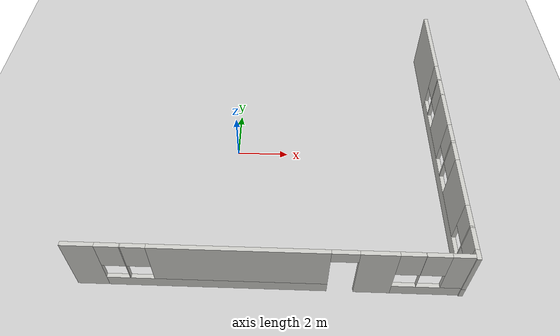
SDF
<sdf version="1.6">
 <world name="default">
  <model name="ground_plane">
   <static>1</static>
   <link name="link">
    <collision name="collision">
     <geometry><plane><normal>0 0 1</normal><size>100 100</size></plane></geometry>
     <surface><friction><ode><mu>100</mu><mu2>50</mu2></ode></friction></surface>
    </collision>
    <visual name="visual">
     <cast_shadows>0</cast_shadows>
     <geometry><plane><normal>0 0 1</normal><size>100 100</size></plane></geometry>
     <material>
      <script><uri>file://media/materials/scripts/gazebo.material</uri><name>Gazebo/Grey</name></script>
     </material>
    </visual>
   </link>
  </model>
  <model name="wall_window_door_tiles">
   <pose>1.42377 -5.91503 0 0 -0 0</pose>
   <link name="Wall_0">
    <visual name="Wall_0_Visual_0">
     <pose>-5.9525 0 1.25 0 -0 0</pose>
     <geometry><box><size>1.095 0.15 2.5</size></box></geometry>
     <material>
      <script><uri>file://media/materials/scripts/gazebo.material</uri><name>Gazebo/CeilingTiled</name></script>
      <ambient>1 1 1 1</ambient>
     </material>
     <meta><layer>0</layer></meta>
    </visual>
    <collision name="Wall_0_Collision_0">
     <geometry><box><size>1.095 0.15 2.5</size></box></geometry>
     <pose>-5.9525 0 1.25 0 -0 0</pose>
    </collision>
    <visual name="Wall_0_Visual_1">
     <pose>3.555 0 1.25 0 -0 0</pose>
     <geometry><box><size>1.24 0.15 2.5</size></box></geometry>
     <material>
      <script><uri>file://media/materials/scripts/gazebo.material</uri><name>Gazebo/CeilingTiled</name></script>
      <ambient>1 1 1 1</ambient>
     </material>
     <meta><layer>0</layer></meta>
    </visual>
    <collision name="Wall_0_Collision_1">
     <geometry><box><size>1.24 0.15 2.5</size></box></geometry>
     <pose>3.555 0 1.25 0 -0 0</pose>
    </collision>
    <visual name="Wall_0_Visual_2">
     <pose>-1.685 0 0.25 0 -0 0</pose>
     <geometry><box><size>7.44 0.15 0.5</size></box></geometry>
     <material>
      <script><uri>file://media/materials/scripts/gazebo.material</uri><name>Gazebo/CeilingTiled</name></script>
      <ambient>1 1 1 1</ambient>
     </material>
     <meta><layer>0</layer></meta>
    </visual>
    <collision name="Wall_0_Collision_2">
     <geometry><box><size>7.44 0.15 0.5</size></box></geometry>
     <pose>-1.685 0 0.25 0 -0 0</pose>
    </collision>
    <visual name="Wall_0_Visual_3">
     <pose>5.3375 0 0.25 0 -0 0</pose>
     <geometry><box><size>2.325 0.15 0.5</size></box></geometry>
     <material>
      <script><uri>file://media/materials/scripts/gazebo.material</uri><name>Gazebo/CeilingTiled</name></script>
      <ambient>1 1 1 1</ambient>
     </material>
     <meta><layer>0</layer></meta>
    </visual>
    <collision name="Wall_0_Collision_3">
     <geometry><box><size>2.325 0.15 0.5</size></box></geometry>
     <pose>5.3375 0 0.25 0 -0 0</pose>
    </collision>
    <visual name="Wall_0_Visual_4">
     <pose>-4.59 0 1.5 0 -0 0</pose>
     <geometry><box><size>0.03 0.15 2</size></box></geometry>
     <material>
      <script><uri>file://media/materials/scripts/gazebo.material</uri><name>Gazebo/CeilingTiled</name></script>
      <ambient>1 1 1 1</ambient>
     </material>
     <meta><layer>0</layer></meta>
    </visual>
    <collision name="Wall_0_Collision_4">
     <geometry><box><size>0.03 0.15 2</size></box></geometry>
     <pose>-4.59 0 1.5 0 -0 0</pose>
    </collision>
    <visual name="Wall_0_Visual_5">
     <pose>-0.87 0 1.5 0 -0 0</pose>
     <geometry><box><size>5.81 0.15 2</size></box></geometry>
     <material>
      <script><uri>file://media/materials/scripts/gazebo.material</uri><name>Gazebo/CeilingTiled</name></script>
      <ambient>1 1 1 1</ambient>
     </material>
     <meta><layer>0</layer></meta>
    </visual>
    <collision name="Wall_0_Collision_5">
     <geometry><box><size>5.81 0.15 2</size></box></geometry>
     <pose>-0.87 0 1.5 0 -0 0</pose>
    </collision>
    <visual name="Wall_0_Visual_6">
     <pose>-0.87 0 1.5 0 -0 0</pose>
     <geometry><box><size>5.81 0.15 2</size></box></geometry>
     <material>
      <script><uri>file://media/materials/scripts/gazebo.material</uri><name>Gazebo/CeilingTiled</name></script>
      <ambient>1 1 1 1</ambient>
     </material>
     <meta><layer>0</layer></meta>
    </visual>
    <collision name="Wall_0_Collision_6">
     <geometry><box><size>5.81 0.15 2</size></box></geometry>
     <pose>-0.87 0 1.5 0 -0 0</pose>
    </collision>
    <visual name="Wall_0_Visual_7">
     <pose>4.98 0 1.5 0 -0 0</pose>
     <geometry><box><size>0.01 0.15 2</size></box></geometry>
     <material>
      <script><uri>file://media/materials/scripts/gazebo.material</uri><name>Gazebo/CeilingTiled</name></script>
      <ambient>1 1 1 1</ambient>
     </material>
     <meta><layer>0</layer></meta>
    </visual>
    <collision name="Wall_0_Collision_7">
     <geometry><box><size>0.01 0.15 2</size></box></geometry>
     <pose>4.98 0 1.5 0 -0 0</pose>
    </collision>
    <visual name="Wall_0_Visual_8">
     <pose>6.1425 0 1.5 0 -0 0</pose>
     <geometry><box><size>0.715 0.15 2</size></box></geometry>
     <material>
      <script><uri>file://media/materials/scripts/gazebo.material</uri><name>Gazebo/CeilingTiled</name></script>
      <ambient>1 1 1 1</ambient>
     </material>
     <meta><layer>0</layer></meta>
    </visual>
    <collision name="Wall_0_Collision_8">
     <geometry><box><size>0.715 0.15 2</size></box></geometry>
     <pose>6.1425 0 1.5 0 -0 0</pose>
    </collision>
    <visual name="Wall_0_Visual_9">
     <pose>-5.005 0 1.9 0 -0 0</pose>
     <geometry><box><size>0.8 0.15 1.2</size></box></geometry>
     <material>
      <script><uri>file://media/materials/scripts/gazebo.material</uri><name>Gazebo/CeilingTiled</name></script>
      <ambient>1 1 1 1</ambient>
     </material>
     <meta><layer>0</layer></meta>
    </visual>
    <collision name="Wall_0_Collision_9">
     <geometry><box><size>0.8 0.15 1.2</size></box></geometry>
     <pose>-5.005 0 1.9 0 -0 0</pose>
    </collision>
    <visual name="Wall_0_Visual_10">
     <pose>4.575 0 1.9 0 -0 0</pose>
     <geometry><box><size>0.8 0.15 1.2</size></box></geometry>
     <material>
      <script><uri>file://media/materials/scripts/gazebo.material</uri><name>Gazebo/CeilingTiled</name></script>
      <ambient>1 1 1 1</ambient>
     </material>
     <meta><layer>0</layer></meta>
    </visual>
    <collision name="Wall_0_Collision_10">
     <geometry><box><size>0.8 0.15 1.2</size></box></geometry>
     <pose>4.575 0 1.9 0 -0 0</pose>
    </collision>
    <visual name="Wall_0_Visual_11">
     <pose>-4.175 0 1.9 0 -0 0</pose>
     <geometry><box><size>0.8 0.15 1.2</size></box></geometry>
     <material>
      <script><uri>file://media/materials/scripts/gazebo.material</uri><name>Gazebo/CeilingTiled</name></script>
      <ambient>1 1 1 1</ambient>
     </material>
     <meta><layer>0</layer></meta>
    </visual>
    <collision name="Wall_0_Collision_11">
     <geometry><box><size>0.8 0.15 1.2</size></box></geometry>
     <pose>-4.175 0 1.9 0 -0 0</pose>
    </collision>
    <visual name="Wall_0_Visual_12">
     <pose>5.385 0 1.9 0 -0 0</pose>
     <geometry><box><size>0.8 0.15 1.2</size></box></geometry>
     <material>
      <script><uri>file://media/materials/scripts/gazebo.material</uri><name>Gazebo/CeilingTiled</name></script>
      <ambient>1 1 1 1</ambient>
     </material>
     <meta><layer>0</layer></meta>
    </visual>
    <collision name="Wall_0_Collision_12">
     <geometry><box><size>0.8 0.15 1.2</size></box></geometry>
     <pose>5.385 0 1.9 0 -0 0</pose>
    </collision>
    <visual name="Wall_0_Visual_13">
     <pose>2.485 0 2.25 0 -0 0</pose>
     <geometry><box><size>0.9 0.15 0.5</size></box></geometry>
     <material>
      <script><uri>file://media/materials/scripts/gazebo.material</uri><name>Gazebo/CeilingTiled</name></script>
      <ambient>1 1 1 1</ambient>
     </material>
     <meta><layer>0</layer></meta>
    </visual>
    <collision name="Wall_0_Collision_13">
     <geometry><box><size>0.9 0.15 0.5</size></box></geometry>
     <pose>2.485 0 2.25 0 -0 0</pose>
    </collision>
    <visual name="Wall_0_Visual_14">
     <pose>2.485 0 2.25 0 -0 0</pose>
     <geometry><box><size>0.9 0.15 0.5</size></box></geometry>
     <material>
      <script><uri>file://media/materials/scripts/gazebo.material</uri><name>Gazebo/CeilingTiled</name></script>
      <ambient>1 1 1 1</ambient>
     </material>
     <meta><layer>0</layer></meta>
    </visual>
    <collision name="Wall_0_Collision_14">
     <geometry><box><size>0.9 0.15 0.5</size></box></geometry>
     <pose>2.485 0 2.25 0 -0 0</pose>
    </collision>
   </link>
   <static>1</static>
  </model>
  <model name="wall_short_window_tiles">
   <pose>7.99601 -0.02569 0 0 -0 0</pose>
   <link name="Wall_0">
    <pose>0 -0 0 0 -0 -1.5708</pose>
    <visual name="Wall_0_Visual_0">
     <pose>-4.43927 0 1.25 0 -0 0</pose>
     <geometry><box><size>3.12146 0.15 2.5</size></box></geometry>
     <material>
      <script><uri>file://media/materials/scripts/gazebo.material</uri><name>Gazebo/CeilingTiled</name></script>
      <ambient>1 1 1 1</ambient>
     </material>
     <meta><layer>0</layer></meta>
    </visual>
    <collision name="Wall_0_Collision_0">
     <geometry><box><size>3.12146 0.15 2.5</size></box></geometry>
     <pose>-4.43927 0 1.25 0 -0 0</pose>
    </collision>
    <visual name="Wall_0_Visual_1">
     <pose>1.56073 0 0.25 0 -0 0</pose>
     <geometry><box><size>8.87854 0.15 0.5</size></box></geometry>
     <material>
      <script><uri>file://media/materials/scripts/gazebo.material</uri><name>Gazebo/CeilingTiled</name></script>
      <ambient>1 1 1 1</ambient>
     </material>
     <meta><layer>0</layer></meta>
    </visual>
    <collision name="Wall_0_Collision_1">
     <geometry><box><size>8.87854 0.15 0.5</size></box></geometry>
     <pose>1.56073 0 0.25 0 -0 0</pose>
    </collision>
    <visual name="Wall_0_Visual_2">
     <pose>-2.05062 0 1.5 0 -0 0</pose>
     <geometry><box><size>0.055833 0.15 2</size></box></geometry>
     <material>
      <script><uri>file://media/materials/scripts/gazebo.material</uri><name>Gazebo/CeilingTiled</name></script>
      <ambient>1 1 1 1</ambient>
     </material>
     <meta><layer>0</layer></meta>
    </visual>
    <collision name="Wall_0_Collision_2">
     <geometry><box><size>0.055833 0.15 2</size></box></geometry>
     <pose>-2.05062 0 1.5 0 -0 0</pose>
    </collision>
    <visual name="Wall_0_Visual_3">
     <pose>-0.423181 0 1.5 0 -0 0</pose>
     <geometry><box><size>1.59905 0.15 2</size></box></geometry>
     <material>
      <script><uri>file://media/materials/scripts/gazebo.material</uri><name>Gazebo/CeilingTiled</name></script>
      <ambient>1 1 1 1</ambient>
     </material>
     <meta><layer>0</layer></meta>
    </visual>
    <collision name="Wall_0_Collision_3">
     <geometry><box><size>1.59905 0.15 2</size></box></geometry>
     <pose>-0.423181 0 1.5 0 -0 0</pose>
    </collision>
    <visual name="Wall_0_Visual_4">
     <pose>1.21525 0 1.5 0 -0 0</pose>
     <geometry><box><size>0.077807 0.15 2</size></box></geometry>
     <material>
      <script><uri>file://media/materials/scripts/gazebo.material</uri><name>Gazebo/CeilingTiled</name></script>
      <ambient>1 1 1 1</ambient>
     </material>
     <meta><layer>0</layer></meta>
    </visual>
    <collision name="Wall_0_Collision_4">
     <geometry><box><size>0.077807 0.15 2</size></box></geometry>
     <pose>1.21525 0 1.5 0 -0 0</pose>
    </collision>
    <visual name="Wall_0_Visual_5">
     <pose>3.0227 0 1.5 0 -0 0</pose>
     <geometry><box><size>1.9371 0.15 2</size></box></geometry>
     <material>
      <script><uri>file://media/materials/scripts/gazebo.material</uri><name>Gazebo/CeilingTiled</name></script>
      <ambient>1 1 1 1</ambient>
     </material>
     <meta><layer>0</layer></meta>
    </visual>
    <collision name="Wall_0_Collision_5">
     <geometry><box><size>1.9371 0.15 2</size></box></geometry>
     <pose>3.0227 0 1.5 0 -0 0</pose>
    </collision>
    <visual name="Wall_0_Visual_6">
     <pose>4.81917 0 1.5 0 -0 0</pose>
     <geometry><box><size>0.055833 0.15 2</size></box></geometry>
     <material>
      <script><uri>file://media/materials/scripts/gazebo.material</uri><name>Gazebo/CeilingTiled</name></script>
      <ambient>1 1 1 1</ambient>
     </material>
     <meta><layer>0</layer></meta>
    </visual>
    <collision name="Wall_0_Collision_6">
     <geometry><box><size>0.055833 0.15 2</size></box></geometry>
     <pose>4.81917 0 1.5 0 -0 0</pose>
    </collision>
    <visual name="Wall_0_Visual_7">
     <pose>5.82354 0 1.5 0 -0 0</pose>
     <geometry><box><size>0.352917 0.15 2</size></box></geometry>
     <material>
      <script><uri>file://media/materials/scripts/gazebo.material</uri><name>Gazebo/CeilingTiled</name></script>
      <ambient>1 1 1 1</ambient>
     </material>
     <meta><layer>0</layer></meta>
    </visual>
    <collision name="Wall_0_Collision_7">
     <geometry><box><size>0.352917 0.15 2</size></box></geometry>
     <pose>5.82354 0 1.5 0 -0 0</pose>
    </collision>
    <visual name="Wall_0_Visual_8">
     <pose>-2.47854 0 1.9 0 -0 0</pose>
     <geometry><box><size>0.8 0.15 1.2</size></box></geometry>
     <material>
      <script><uri>file://media/materials/scripts/gazebo.material</uri><name>Gazebo/CeilingTiled</name></script>
      <ambient>1 1 1 1</ambient>
     </material>
     <meta><layer>0</layer></meta>
    </visual>
    <collision name="Wall_0_Collision_8">
     <geometry><box><size>0.8 0.15 1.2</size></box></geometry>
     <pose>-2.47854 0 1.9 0 -0 0</pose>
    </collision>
    <visual name="Wall_0_Visual_9">
     <pose>-1.62271 0 1.9 0 -0 0</pose>
     <geometry><box><size>0.8 0.15 1.2</size></box></geometry>
     <material>
      <script><uri>file://media/materials/scripts/gazebo.material</uri><name>Gazebo/CeilingTiled</name></script>
      <ambient>1 1 1 1</ambient>
     </material>
     <meta><layer>0</layer></meta>
    </visual>
    <collision name="Wall_0_Collision_9">
     <geometry><box><size>0.8 0.15 1.2</size></box></geometry>
     <pose>-1.62271 0 1.9 0 -0 0</pose>
    </collision>
    <visual name="Wall_0_Visual_10">
     <pose>0.776344 0 1.9 0 -0 0</pose>
     <geometry><box><size>0.8 0.15 1.2</size></box></geometry>
     <material>
      <script><uri>file://media/materials/scripts/gazebo.material</uri><name>Gazebo/CeilingTiled</name></script>
      <ambient>1 1 1 1</ambient>
     </material>
     <meta><layer>0</layer></meta>
    </visual>
    <collision name="Wall_0_Collision_10">
     <geometry><box><size>0.8 0.15 1.2</size></box></geometry>
     <pose>0.776344 0 1.9 0 -0 0</pose>
    </collision>
    <visual name="Wall_0_Visual_11">
     <pose>1.65415 0 1.9 0 -0 0</pose>
     <geometry><box><size>0.8 0.15 1.2</size></box></geometry>
     <material>
      <script><uri>file://media/materials/scripts/gazebo.material</uri><name>Gazebo/CeilingTiled</name></script>
      <ambient>1 1 1 1</ambient>
     </material>
     <meta><layer>0</layer></meta>
    </visual>
    <collision name="Wall_0_Collision_11">
     <geometry><box><size>0.8 0.15 1.2</size></box></geometry>
     <pose>1.65415 0 1.9 0 -0 0</pose>
    </collision>
    <visual name="Wall_0_Visual_12">
     <pose>4.39125 0 1.9 0 -0 0</pose>
     <geometry><box><size>0.8 0.15 1.2</size></box></geometry>
     <material>
      <script><uri>file://media/materials/scripts/gazebo.material</uri><name>Gazebo/CeilingTiled</name></script>
      <ambient>1 1 1 1</ambient>
     </material>
     <meta><layer>0</layer></meta>
    </visual>
    <collision name="Wall_0_Collision_12">
     <geometry><box><size>0.8 0.15 1.2</size></box></geometry>
     <pose>4.39125 0 1.9 0 -0 0</pose>
    </collision>
    <visual name="Wall_0_Visual_13">
     <pose>5.24708 0 1.9 0 -0 0</pose>
     <geometry><box><size>0.8 0.15 1.2</size></box></geometry>
     <material>
      <script><uri>file://media/materials/scripts/gazebo.material</uri><name>Gazebo/CeilingTiled</name></script>
      <ambient>1 1 1 1</ambient>
     </material>
     <meta><layer>0</layer></meta>
    </visual>
    <collision name="Wall_0_Collision_13">
     <geometry><box><size>0.8 0.15 1.2</size></box></geometry>
     <pose>5.24708 0 1.9 0 -0 0</pose>
    </collision>
   </link>
   <static>1</static>
  </model>
 </world>
</sdf>
